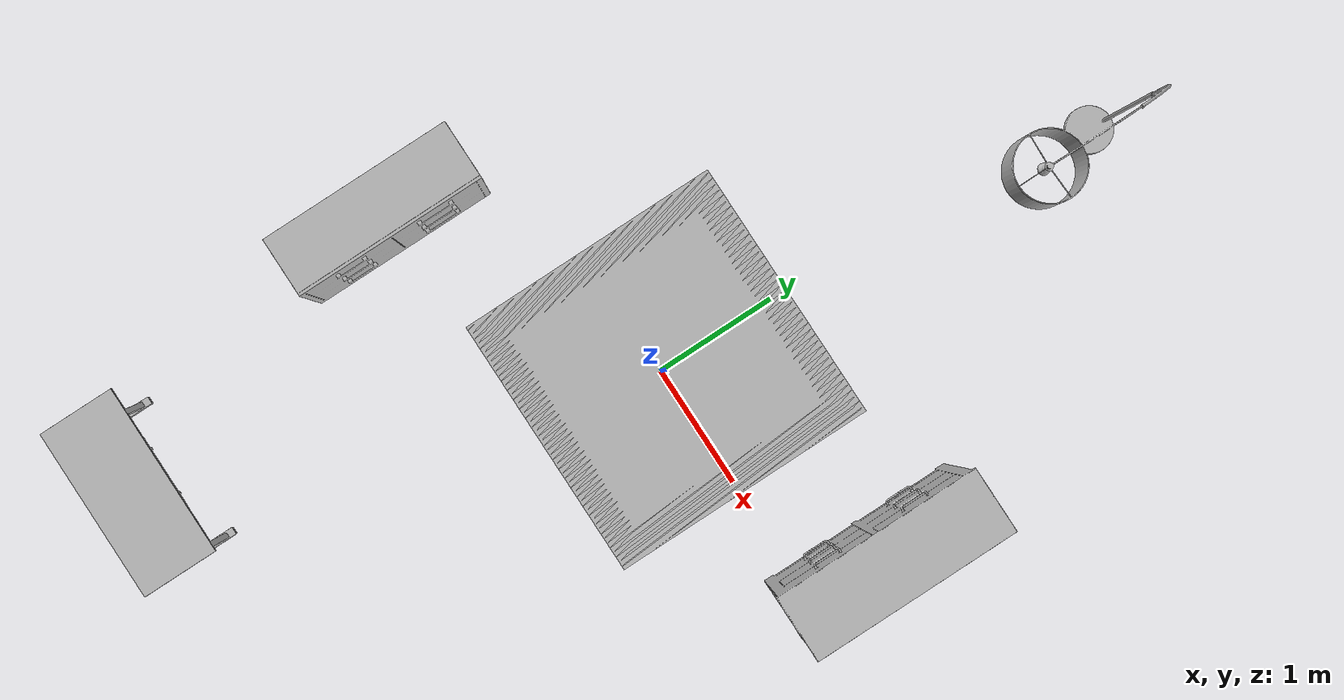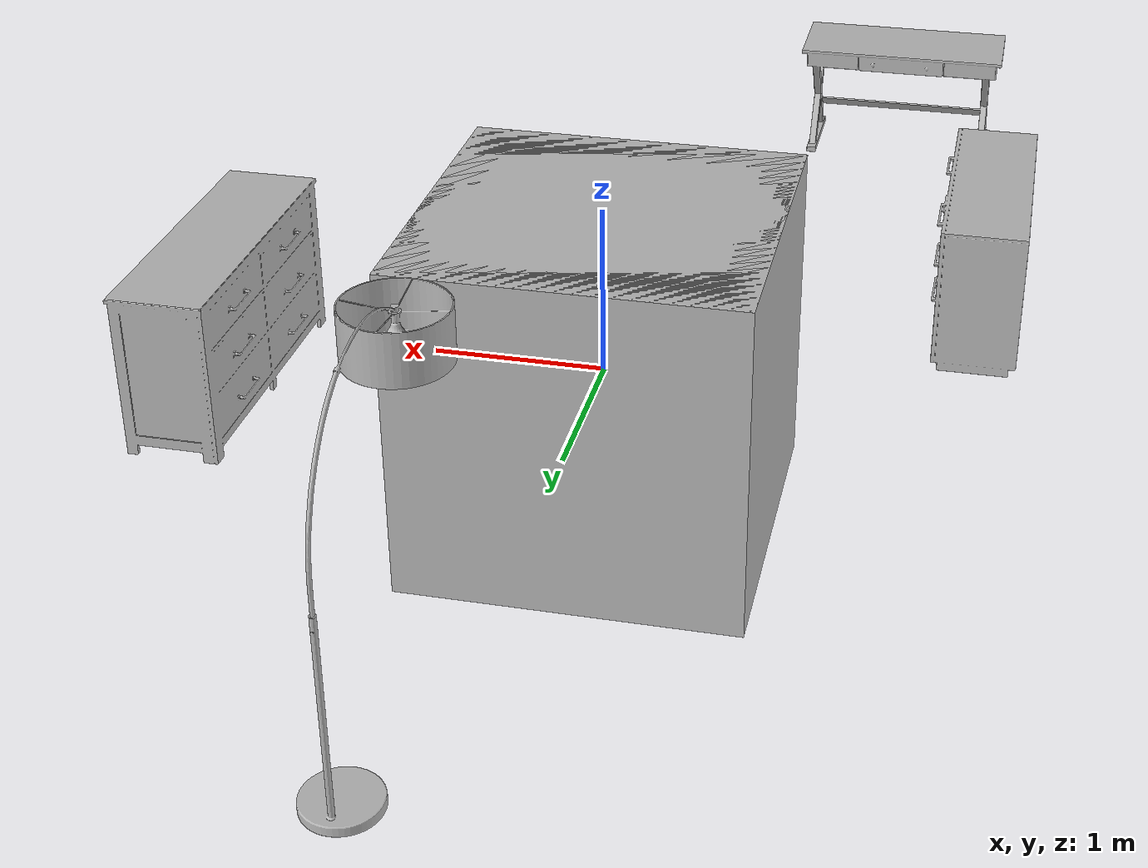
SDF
<sdf version="1.6">
 <world name="generation_lqv6dyrf2r82_world_1">
  <include><uri>model://sun</uri></include>
  <model name="FloorLamps_O84057e8e96e3_lod0_7">
   <include>
    <uri>model://FloorLamps_O84057e8e96e3_lod0</uri>
    <pose>0.25005681812763214 3.7318019911646845 0.0 0.0 0.0 0.0</pose>
    <static>true</static>
   </include>
  </model>
  <model name="Dressers_Od32ea272d9d0_lod0_8">
   <include>
    <uri>model://Dressers_Od32ea272d9d0_lod0</uri>
    <pose>1.9953181147575378 0.6000811815261842 0.0 0.0 0.0 4.71</pose>
    <static>true</static>
   </include>
  </model>
  <model name="Dressers_Ofd64b14db4b9_lod0_10">
   <include>
    <uri>model://Dressers_Ofd64b14db4b9_lod0</uri>
    <pose>-2.0668693736195567 -1.1000134110450746 0.0 0.0 0.0 1.57</pose>
    <static>true</static>
   </include>
  </model>
  <model name="HomeOfficeDesks_O19496d17b1b5_lod0_11">
   <include>
    <uri>model://HomeOfficeDesks_O19496d17b1b5_lod0</uri>
    <pose>-1.3458615303039552 -3.6494696080684665 0.0 0.0 0.0 3.14</pose>
    <static>true</static>
   </include>
  </model>
  <model name="wall_0">
   <include><uri>model://generation_lqv6dyrf2r82_world_1/wall_0</uri><static>true</static></include>
  </model>
  <model name="wall_1">
   <include><uri>model://generation_lqv6dyrf2r82_world_1/wall_1</uri><static>true</static></include>
  </model>
  <model name="wall_2">
   <include><uri>model://generation_lqv6dyrf2r82_world_1/wall_2</uri><static>true</static></include>
  </model>
  <model name="wall_3">
   <include><uri>model://generation_lqv6dyrf2r82_world_1/wall_3</uri><static>true</static></include>
  </model>
  <model name="floor_Bedroom">
   <include><uri>model://generation_lqv6dyrf2r82_world_1/floor_Bedroom</uri><static>true</static></include>
  </model>
 </world>
</sdf>

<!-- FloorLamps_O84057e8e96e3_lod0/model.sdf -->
<sdf version="1.6">
	<model name="FloorLamps_O84057e8e96e3_lod0">
		<link name="main_link">
			<visual name="visual_RootNode">
				<geometry>
					<mesh>
						<uri>model://FloorLamps_O84057e8e96e3_lod0/meshes/visual_RootNode.dae</uri>
					</mesh>
				</geometry>
			</visual>
			<collision name="collision_RootNode_lod0_0">
				<geometry>
					<mesh>
						<uri>model://FloorLamps_O84057e8e96e3_lod0/meshes/collision_RootNode_lod0_0.dae</uri>
					</mesh>
				</geometry>
			</collision>
		</link>
	</model>
</sdf>

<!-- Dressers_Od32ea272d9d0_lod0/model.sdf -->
<sdf version="1.6">
	<model name="Dressers_Od32ea272d9d0_lod0">
		<link name="main_link">
			<visual name="visual_RootNode">
				<geometry>
					<mesh>
						<uri>model://Dressers_Od32ea272d9d0_lod0/meshes/visual_RootNode.dae</uri>
					</mesh>
				</geometry>
			</visual>
			<collision name="collision_RootNode_lod0_0">
				<geometry>
					<mesh>
						<uri>model://Dressers_Od32ea272d9d0_lod0/meshes/collision_RootNode_lod0_0.dae</uri>
					</mesh>
				</geometry>
			</collision>
		</link>
	</model>
</sdf>

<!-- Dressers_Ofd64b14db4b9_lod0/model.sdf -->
<sdf version="1.6">
	<model name="Dressers_Ofd64b14db4b9_lod0">
		<link name="main_link">
			<visual name="visual_RootNode">
				<geometry>
					<mesh>
						<uri>model://Dressers_Ofd64b14db4b9_lod0/meshes/visual_RootNode.dae</uri>
					</mesh>
				</geometry>
			</visual>
			<collision name="collision_RootNode_lod0_0">
				<geometry>
					<mesh>
						<uri>model://Dressers_Ofd64b14db4b9_lod0/meshes/collision_RootNode_lod0_0.dae</uri>
					</mesh>
				</geometry>
			</collision>
		</link>
	</model>
</sdf>

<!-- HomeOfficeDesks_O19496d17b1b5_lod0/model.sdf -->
<sdf version="1.6">
	<model name="HomeOfficeDesks_O19496d17b1b5_lod0">
		<link name="main_link">
			<visual name="visual_RootNode">
				<geometry>
					<mesh>
						<uri>model://HomeOfficeDesks_O19496d17b1b5_lod0/meshes/visual_RootNode.dae</uri>
					</mesh>
				</geometry>
			</visual>
			<collision name="collision_RootNode_lod0_0">
				<geometry>
					<mesh>
						<uri>model://HomeOfficeDesks_O19496d17b1b5_lod0/meshes/collision_RootNode_lod0_0.dae</uri>
					</mesh>
				</geometry>
			</collision>
		</link>
	</model>
</sdf>

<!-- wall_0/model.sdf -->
<sdf version="1.6">
  <model name="wall_0">
    <static>true</static>
    <link name="link">
      <collision name="collision">
        <pose>0 0 0 0 0 0</pose>
        <geometry>
          <mesh>
            <uri>model://generation_lqv6dyrf2r82_world_1/wall_0/meshes/wall_0.dae</uri>
            <scale>1 1 1</scale>
          </mesh>
        </geometry>
      </collision>
      <visual name="visual">
        <meta>
          <layer>0</layer>
        </meta>
        <pose>0 0 0 0 0 0</pose>
        <geometry>
          <mesh>
            <uri>model://generation_lqv6dyrf2r82_world_1/wall_0/meshes/wall_0.dae</uri>
            <scale>1 1 1</scale>
          </mesh>
        </geometry>
      </visual>
    </link>
  </model>
</sdf>

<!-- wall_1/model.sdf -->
<sdf version="1.6">
  <model name="wall_1">
    <static>true</static>
    <link name="link">
      <collision name="collision">
        <pose>0 0 0 0 0 0</pose>
        <geometry>
          <mesh>
            <uri>model://generation_lqv6dyrf2r82_world_1/wall_1/meshes/wall_1.dae</uri>
            <scale>1 1 1</scale>
          </mesh>
        </geometry>
      </collision>
      <visual name="visual">
        <meta>
          <layer>0</layer>
        </meta>
        <pose>0 0 0 0 0 0</pose>
        <geometry>
          <mesh>
            <uri>model://generation_lqv6dyrf2r82_world_1/wall_1/meshes/wall_1.dae</uri>
            <scale>1 1 1</scale>
          </mesh>
        </geometry>
      </visual>
    </link>
  </model>
</sdf>

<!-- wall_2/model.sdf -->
<sdf version="1.6">
  <model name="wall_2">
    <static>true</static>
    <link name="link">
      <collision name="collision">
        <pose>0 0 0 0 0 0</pose>
        <geometry>
          <mesh>
            <uri>model://generation_lqv6dyrf2r82_world_1/wall_2/meshes/wall_2.dae</uri>
            <scale>1 1 1</scale>
          </mesh>
        </geometry>
      </collision>
      <visual name="visual">
        <meta>
          <layer>0</layer>
        </meta>
        <pose>0 0 0 0 0 0</pose>
        <geometry>
          <mesh>
            <uri>model://generation_lqv6dyrf2r82_world_1/wall_2/meshes/wall_2.dae</uri>
            <scale>1 1 1</scale>
          </mesh>
        </geometry>
      </visual>
    </link>
  </model>
</sdf>

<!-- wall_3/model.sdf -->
<sdf version="1.6">
  <model name="wall_3">
    <static>true</static>
    <link name="link">
      <collision name="collision">
        <pose>0 0 0 0 0 0</pose>
        <geometry>
          <mesh>
            <uri>model://generation_lqv6dyrf2r82_world_1/wall_3/meshes/wall_3.dae</uri>
            <scale>1 1 1</scale>
          </mesh>
        </geometry>
      </collision>
      <visual name="visual">
        <meta>
          <layer>0</layer>
        </meta>
        <pose>0 0 0 0 0 0</pose>
        <geometry>
          <mesh>
            <uri>model://generation_lqv6dyrf2r82_world_1/wall_3/meshes/wall_3.dae</uri>
            <scale>1 1 1</scale>
          </mesh>
        </geometry>
      </visual>
    </link>
  </model>
</sdf>

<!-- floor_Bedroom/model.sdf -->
<sdf version="1.6">
  <model name="floor_Bedroom">
    <static>true</static>
    <link name="link">
      <collision name="collision">
        <pose>0 0 0 0 0 0</pose>
        <geometry>
          <mesh>
            <uri>model://generation_lqv6dyrf2r82_world_1/floor_Bedroom/meshes/floor_Bedroom.dae</uri>
            <scale>1 1 1</scale>
          </mesh>
        </geometry>
      </collision>
      <visual name="visual">
        <meta>
          <layer>0</layer>
        </meta>
        <pose>0 0 0 0 0 0</pose>
        <geometry>
          <mesh>
            <uri>model://generation_lqv6dyrf2r82_world_1/floor_Bedroom/meshes/floor_Bedroom.dae</uri>
            <scale>1 1 1</scale>
          </mesh>
        </geometry>
      </visual>
    </link>
  </model>
</sdf>
